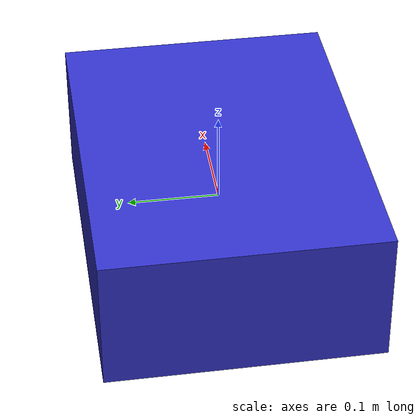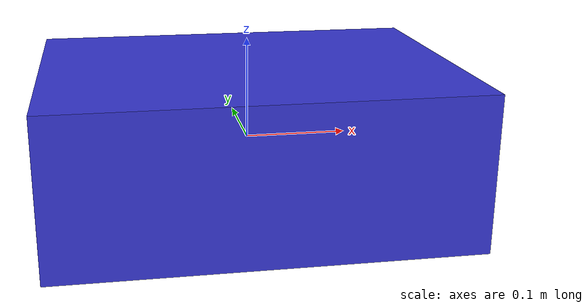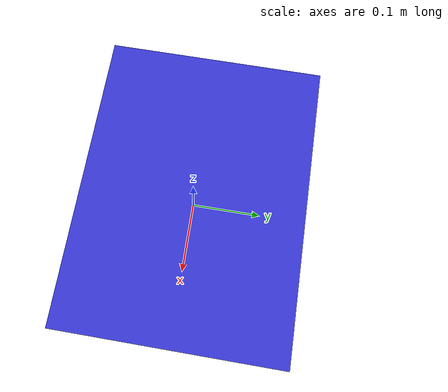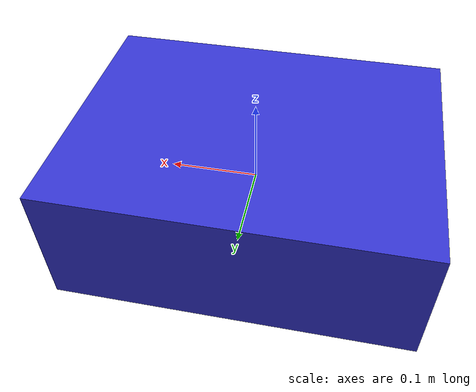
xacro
<?xml version="1.0"?>
<!--
  URDF/Xacro Template for Indoor Test Platform
  Smaller version for indoor testing
-->
<robot xmlns:xacro="http://www.ros.org/wiki/xacro" name="testbot">

  <!-- Scaled down properties for indoor testing -->
  <xacro:property name="base_length" value="0.4"/>
  <xacro:property name="base_width" value="0.3"/>
  <xacro:property name="base_height" value="0.15"/>
  <xacro:property name="wheel_radius" value="0.05"/>
  <xacro:property name="wheel_width" value="0.03"/>
  <xacro:property name="wheelbase" value="0.25"/>
  <xacro:property name="base_mass" value="5.0"/>

  <!-- Similar structure to mower but scaled down -->
  <link name="base_link">
    <visual>
      <geometry>
        <box size="${base_length} ${base_width} ${base_height}"/>
      </geometry>
      <material name="blue">
        <color rgba="0.2 0.2 0.8 1.0"/>
      </material>
    </visual>
    <collision>
      <geometry>
        <box size="${base_length} ${base_width} ${base_height}"/>
      </geometry>
    </collision>
    <inertial>
      <mass value="${base_mass}"/>
      <inertia ixx="0.1" ixy="0.0" ixz="0.0" iyy="0.2" iyz="0.0" izz="0.2"/>
    </inertial>
  </link>

  <!-- Wheels (reusing macro pattern from mower) -->
  <xacro:macro name="wheel" params="prefix reflect">
    <link name="${prefix}_wheel">
      <visual>
        <geometry>
          <cylinder radius="${wheel_radius}" length="${wheel_width}"/>
        </geometry>
        <material name="black">
          <color rgba="0.1 0.1 0.1 1.0"/>
        </material>
      </visual>
      <collision>
        <geometry>
          <cylinder radius="${wheel_radius}" length="${wheel_width}"/>
        </geometry>
      </collision>
      <inertial>
        <mass value="0.5"/>
        <inertia ixx="0.001" ixy="0.0" ixz="0.0" iyy="0.001" iyz="0.0" izz="0.001"/>
      </inertial>
    </link>

    <joint name="${prefix}_wheel_joint" type="continuous">
      <parent link="base_link"/>
      <child link="${prefix}_wheel"/>
      <origin xyz="0 ${reflect * wheelbase/2} 0" rpy="-1.5708 0 0"/>
      <axis xyz="0 0 1"/>
    </joint>
  </xacro:macro>

  <xacro:wheel prefix="left" reflect="1"/>
  <xacro:wheel prefix="right" reflect="-1"/>

</robot>
